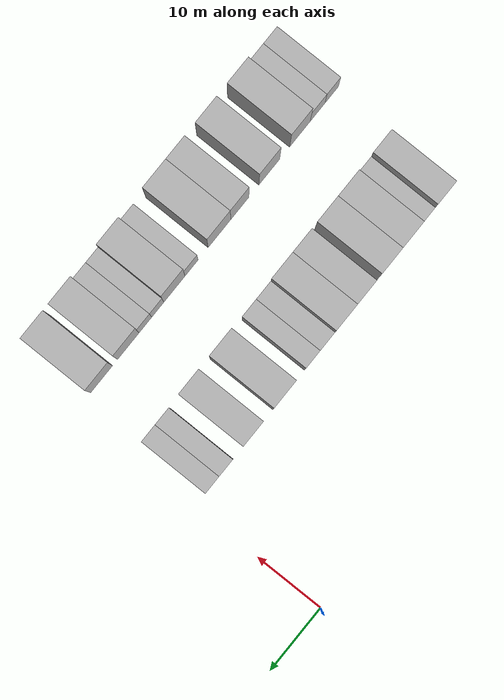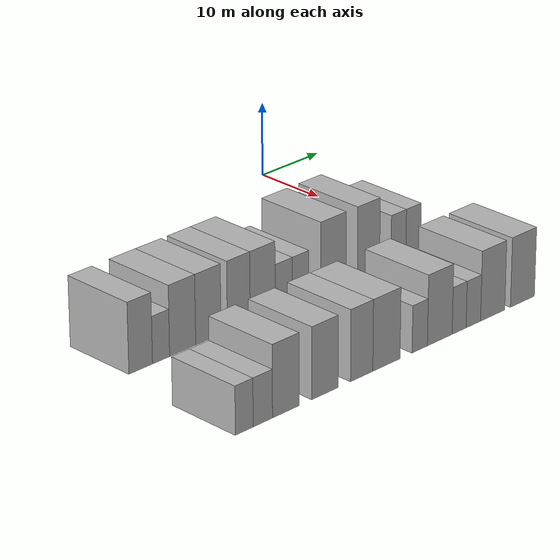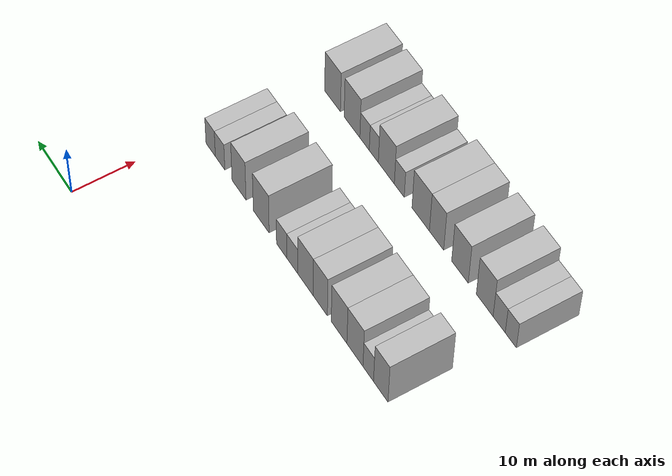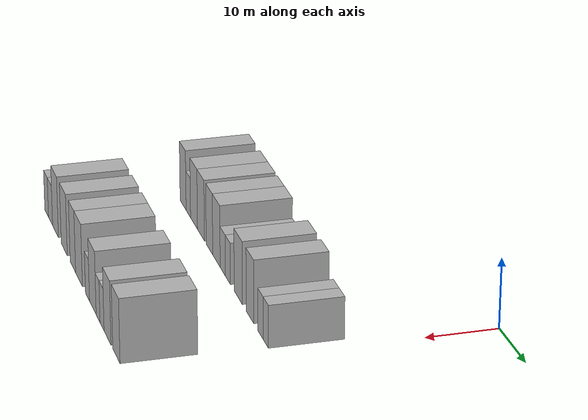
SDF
<sdf version="1.6">
 <world name="default">
  <model name="building_39">
   <static>1</static>
   <pose>25.0000 -48.7673 0 0.000000 0.000000 0.000000</pose>
   <link name="link">
    <pose>0 0 4.50 0 0 0</pose>
    <collision name="collision"><geometry><box><size>10.0000 3.6170 9.0000</size></box></geometry></collision>
    <visual name="visual">
     <cast_shadows>0</cast_shadows>
     <geometry><box><size>10.0000 3.6170 9.0000</size></box></geometry>
     <material>
      <script>
       <uri>model://HANNAS_wall/materials/scripts</uri>
       <uri>model://HANNAS_wall/materials/textures</uri>
       <name>vrc/HANNAS_wall</name>
      </script>
     </material>
    </visual>
   </link>
  </model>
  <model name="building_40">
   <static>1</static>
   <pose>25.0000 -45.6345 0 0.000000 0.000000 0.000000</pose>
   <link name="link">
    <pose>0 0 3.00 0 0 0</pose>
    <collision name="collision"><geometry><box><size>10.0000 2.6487 6.0000</size></box></geometry></collision>
    <visual name="visual">
     <cast_shadows>0</cast_shadows>
     <geometry><box><size>10.0000 2.6487 6.0000</size></box></geometry>
     <material>
      <script>
       <uri>model://HANNAS_wall/materials/scripts</uri>
       <uri>model://HANNAS_wall/materials/textures</uri>
       <name>vrc/HANNAS_wall</name>
      </script>
     </material>
    </visual>
   </link>
  </model>
  <model name="building_41">
   <static>1</static>
   <pose>25.0000 -42.2691 0 0.000000 0.000000 0.000000</pose>
   <link name="link">
    <pose>0 0 4.50 0 0 0</pose>
    <collision name="collision"><geometry><box><size>10.0000 4.0822 9.0000</size></box></geometry></collision>
    <visual name="visual">
     <cast_shadows>0</cast_shadows>
     <geometry><box><size>10.0000 4.0822 9.0000</size></box></geometry>
     <material>
      <script>
       <uri>model://HANNAS_wall/materials/scripts</uri>
       <uri>model://HANNAS_wall/materials/textures</uri>
       <name>vrc/HANNAS_wall</name>
      </script>
     </material>
    </visual>
   </link>
  </model>
  <model name="building_42">
   <static>1</static>
   <pose>25.0000 -38.2107 0 0.000000 0.000000 0.000000</pose>
   <link name="link">
    <pose>0 0 4.50 0 0 0</pose>
    <collision name="collision"><geometry><box><size>10.0000 4.0345 9.0000</size></box></geometry></collision>
    <visual name="visual">
     <cast_shadows>0</cast_shadows>
     <geometry><box><size>10.0000 4.0345 9.0000</size></box></geometry>
     <material>
      <script>
       <uri>model://HANNAS_wall/materials/scripts</uri>
       <uri>model://HANNAS_wall/materials/textures</uri>
       <name>vrc/HANNAS_wall</name>
      </script>
     </material>
    </visual>
   </link>
  </model>
  <model name="building_43">
   <static>1</static>
   <pose>25.0000 -33.3450 0 0.000000 0.000000 0.000000</pose>
   <link name="link">
    <pose>0 0 4.50 0 0 0</pose>
    <collision name="collision"><geometry><box><size>10.0000 3.6970 9.0000</size></box></geometry></collision>
    <visual name="visual">
     <cast_shadows>0</cast_shadows>
     <geometry><box><size>10.0000 3.6970 9.0000</size></box></geometry>
     <material>
      <script>
       <uri>model://HANNAS_wall/materials/scripts</uri>
       <uri>model://HANNAS_wall/materials/textures</uri>
       <name>vrc/HANNAS_wall</name>
      </script>
     </material>
    </visual>
   </link>
  </model>
  <model name="building_44">
   <static>1</static>
   <pose>25.0000 -29.4401 0 0.000000 0.000000 0.000000</pose>
   <link name="link">
    <pose>0 0 4.50 0 0 0</pose>
    <collision name="collision"><geometry><box><size>10.0000 4.1129 9.0000</size></box></geometry></collision>
    <visual name="visual">
     <cast_shadows>0</cast_shadows>
     <geometry><box><size>10.0000 4.1129 9.0000</size></box></geometry>
     <material>
      <script>
       <uri>model://HANNAS_wall/materials/scripts</uri>
       <uri>model://HANNAS_wall/materials/textures</uri>
       <name>vrc/HANNAS_wall</name>
      </script>
     </material>
    </visual>
   </link>
  </model>
  <model name="building_45">
   <static>1</static>
   <pose>25.0000 -25.9536 0 0.000000 0.000000 0.000000</pose>
   <link name="link">
    <pose>0 0 3.00 0 0 0</pose>
    <collision name="collision"><geometry><box><size>10.0000 2.8602 6.0000</size></box></geometry></collision>
    <visual name="visual">
     <cast_shadows>0</cast_shadows>
     <geometry><box><size>10.0000 2.8602 6.0000</size></box></geometry>
     <material>
      <script>
       <uri>model://HANNAS_wall/materials/scripts</uri>
       <uri>model://HANNAS_wall/materials/textures</uri>
       <name>vrc/HANNAS_wall</name>
      </script>
     </material>
    </visual>
   </link>
  </model>
  <model name="building_46">
   <static>1</static>
   <pose>25.0000 -23.1433 0 0.000000 0.000000 0.000000</pose>
   <link name="link">
    <pose>0 0 3.00 0 0 0</pose>
    <collision name="collision"><geometry><box><size>10.0000 2.7603 6.0000</size></box></geometry></collision>
    <visual name="visual">
     <cast_shadows>0</cast_shadows>
     <geometry><box><size>10.0000 2.7603 6.0000</size></box></geometry>
     <material>
      <script>
       <uri>model://HANNAS_wall/materials/scripts</uri>
       <uri>model://HANNAS_wall/materials/textures</uri>
       <name>vrc/HANNAS_wall</name>
      </script>
     </material>
    </visual>
   </link>
  </model>
  <model name="building_47">
   <static>1</static>
   <pose>25.0000 -17.6112 0 0.000000 0.000000 0.000000</pose>
   <link name="link">
    <pose>0 0 4.50 0 0 0</pose>
    <collision name="collision"><geometry><box><size>10.0000 4.3039 9.0000</size></box></geometry></collision>
    <visual name="visual">
     <cast_shadows>0</cast_shadows>
     <geometry><box><size>10.0000 4.3039 9.0000</size></box></geometry>
     <material>
      <script>
       <uri>model://HANNAS_wall/materials/scripts</uri>
       <uri>model://HANNAS_wall/materials/textures</uri>
       <name>vrc/HANNAS_wall</name>
      </script>
     </material>
    </visual>
   </link>
  </model>
  <model name="building_48">
   <static>1</static>
   <pose>25.0000 -11.5176 0 0.000000 0.000000 0.000000</pose>
   <link name="link">
    <pose>0 0 4.50 0 0 0</pose>
    <collision name="collision"><geometry><box><size>10.0000 3.8833 9.0000</size></box></geometry></collision>
    <visual name="visual">
     <cast_shadows>0</cast_shadows>
     <geometry><box><size>10.0000 3.8833 9.0000</size></box></geometry>
     <material>
      <script>
       <uri>model://HANNAS_wall/materials/scripts</uri>
       <uri>model://HANNAS_wall/materials/textures</uri>
       <name>vrc/HANNAS_wall</name>
      </script>
     </material>
    </visual>
   </link>
  </model>
  <model name="building_49">
   <static>1</static>
   <pose>25.0000 -6.2448 0 0.000000 0.000000 0.000000</pose>
   <link name="link">
    <pose>0 0 3.00 0 0 0</pose>
    <collision name="collision"><geometry><box><size>10.0000 2.6624 6.0000</size></box></geometry></collision>
    <visual name="visual">
     <cast_shadows>0</cast_shadows>
     <geometry><box><size>10.0000 2.6624 6.0000</size></box></geometry>
     <material>
      <script>
       <uri>model://HANNAS_wall/materials/scripts</uri>
       <uri>model://HANNAS_wall/materials/textures</uri>
       <name>vrc/HANNAS_wall</name>
      </script>
     </material>
    </visual>
   </link>
  </model>
  <model name="building_50">
   <static>1</static>
   <pose>25.0000 -3.5870 0 0.000000 0.000000 0.000000</pose>
   <link name="link">
    <pose>0 0 3.00 0 0 0</pose>
    <collision name="collision"><geometry><box><size>10.0000 2.6531 6.0000</size></box></geometry></collision>
    <visual name="visual">
     <cast_shadows>0</cast_shadows>
     <geometry><box><size>10.0000 2.6531 6.0000</size></box></geometry>
     <material>
      <script>
       <uri>model://HANNAS_wall/materials/scripts</uri>
       <uri>model://HANNAS_wall/materials/textures</uri>
       <name>vrc/HANNAS_wall</name>
      </script>
     </material>
    </visual>
   </link>
  </model>
  <model name="building_130">
   <static>1</static>
   <pose>44.0000 -50.8875 0 0.000000 0.000000 0.000000</pose>
   <link name="link">
    <pose>0 0 3.00 0 0 0</pose>
    <collision name="collision"><geometry><box><size>10.0000 2.7025 6.0000</size></box></geometry></collision>
    <visual name="visual">
     <cast_shadows>0</cast_shadows>
     <geometry><box><size>10.0000 2.7025 6.0000</size></box></geometry>
     <material>
      <script>
       <uri>model://HANNAS_wall/materials/scripts</uri>
       <uri>model://HANNAS_wall/materials/textures</uri>
       <name>vrc/HANNAS_wall</name>
      </script>
     </material>
    </visual>
   </link>
  </model>
  <model name="building_131">
   <static>1</static>
   <pose>44.0000 -48.0584 0 0.000000 0.000000 0.000000</pose>
   <link name="link">
    <pose>0 0 3.00 0 0 0</pose>
    <collision name="collision"><geometry><box><size>10.0000 2.9557 6.0000</size></box></geometry></collision>
    <visual name="visual">
     <cast_shadows>0</cast_shadows>
     <geometry><box><size>10.0000 2.9557 6.0000</size></box></geometry>
     <material>
      <script>
       <uri>model://HANNAS_wall/materials/scripts</uri>
       <uri>model://HANNAS_wall/materials/textures</uri>
       <name>vrc/HANNAS_wall</name>
      </script>
     </material>
    </visual>
   </link>
  </model>
  <model name="building_132">
   <static>1</static>
   <pose>44.0000 -44.5231 0 0.000000 0.000000 0.000000</pose>
   <link name="link">
    <pose>0 0 4.50 0 0 0</pose>
    <collision name="collision"><geometry><box><size>10.0000 4.1150 9.0000</size></box></geometry></collision>
    <visual name="visual">
     <cast_shadows>0</cast_shadows>
     <geometry><box><size>10.0000 4.1150 9.0000</size></box></geometry>
     <material>
      <script>
       <uri>model://HANNAS_wall/materials/scripts</uri>
       <uri>model://HANNAS_wall/materials/textures</uri>
       <name>vrc/HANNAS_wall</name>
      </script>
     </material>
    </visual>
   </link>
  </model>
  <model name="building_133">
   <static>1</static>
   <pose>44.0000 -38.3868 0 0.000000 0.000000 0.000000</pose>
   <link name="link">
    <pose>0 0 4.50 0 0 0</pose>
    <collision name="collision"><geometry><box><size>10.0000 4.1574 9.0000</size></box></geometry></collision>
    <visual name="visual">
     <cast_shadows>0</cast_shadows>
     <geometry><box><size>10.0000 4.1574 9.0000</size></box></geometry>
     <material>
      <script>
       <uri>model://HANNAS_wall/materials/scripts</uri>
       <uri>model://HANNAS_wall/materials/textures</uri>
       <name>vrc/HANNAS_wall</name>
      </script>
     </material>
    </visual>
   </link>
  </model>
  <model name="building_134">
   <static>1</static>
   <pose>44.0000 -32.4917 0 0.000000 0.000000 0.000000</pose>
   <link name="link">
    <pose>0 0 4.50 0 0 0</pose>
    <collision name="collision"><geometry><box><size>10.0000 3.6329 9.0000</size></box></geometry></collision>
    <visual name="visual">
     <cast_shadows>0</cast_shadows>
     <geometry><box><size>10.0000 3.6329 9.0000</size></box></geometry>
     <material>
      <script>
       <uri>model://HANNAS_wall/materials/scripts</uri>
       <uri>model://HANNAS_wall/materials/textures</uri>
       <name>vrc/HANNAS_wall</name>
      </script>
     </material>
    </visual>
   </link>
  </model>
  <model name="building_135">
   <static>1</static>
   <pose>44.0000 -28.4306 0 0.000000 0.000000 0.000000</pose>
   <link name="link">
    <pose>0 0 4.50 0 0 0</pose>
    <collision name="collision"><geometry><box><size>10.0000 4.4893 9.0000</size></box></geometry></collision>
    <visual name="visual">
     <cast_shadows>0</cast_shadows>
     <geometry><box><size>10.0000 4.4893 9.0000</size></box></geometry>
     <material>
      <script>
       <uri>model://HANNAS_wall/materials/scripts</uri>
       <uri>model://HANNAS_wall/materials/textures</uri>
       <name>vrc/HANNAS_wall</name>
      </script>
     </material>
    </visual>
   </link>
  </model>
  <model name="building_136">
   <static>1</static>
   <pose>44.0000 -22.8930 0 0.000000 0.000000 0.000000</pose>
   <link name="link">
    <pose>0 0 3.00 0 0 0</pose>
    <collision name="collision"><geometry><box><size>10.0000 2.5858 6.0000</size></box></geometry></collision>
    <visual name="visual">
     <cast_shadows>0</cast_shadows>
     <geometry><box><size>10.0000 2.5858 6.0000</size></box></geometry>
     <material>
      <script>
       <uri>model://HANNAS_wall/materials/scripts</uri>
       <uri>model://HANNAS_wall/materials/textures</uri>
       <name>vrc/HANNAS_wall</name>
      </script>
     </material>
    </visual>
   </link>
  </model>
  <model name="building_137">
   <static>1</static>
   <pose>44.0000 -19.4909 0 0.000000 0.000000 0.000000</pose>
   <link name="link">
    <pose>0 0 4.50 0 0 0</pose>
    <collision name="collision"><geometry><box><size>10.0000 4.2184 9.0000</size></box></geometry></collision>
    <visual name="visual">
     <cast_shadows>0</cast_shadows>
     <geometry><box><size>10.0000 4.2184 9.0000</size></box></geometry>
     <material>
      <script>
       <uri>model://HANNAS_wall/materials/scripts</uri>
       <uri>model://HANNAS_wall/materials/textures</uri>
       <name>vrc/HANNAS_wall</name>
      </script>
     </material>
    </visual>
   </link>
  </model>
  <model name="building_138">
   <static>1</static>
   <pose>44.0000 -16.1784 0 0.000000 0.000000 0.000000</pose>
   <link name="link">
    <pose>0 0 3.00 0 0 0</pose>
    <collision name="collision"><geometry><box><size>10.0000 2.4067 6.0000</size></box></geometry></collision>
    <visual name="visual">
     <cast_shadows>0</cast_shadows>
     <geometry><box><size>10.0000 2.4067 6.0000</size></box></geometry>
     <material>
      <script>
       <uri>model://HANNAS_wall/materials/scripts</uri>
       <uri>model://HANNAS_wall/materials/textures</uri>
       <name>vrc/HANNAS_wall</name>
      </script>
     </material>
    </visual>
   </link>
  </model>
  <model name="building_139">
   <static>1</static>
   <pose>44.0000 -13.7182 0 0.000000 0.000000 0.000000</pose>
   <link name="link">
    <pose>0 0 3.00 0 0 0</pose>
    <collision name="collision"><geometry><box><size>10.0000 2.5136 6.0000</size></box></geometry></collision>
    <visual name="visual">
     <cast_shadows>0</cast_shadows>
     <geometry><box><size>10.0000 2.5136 6.0000</size></box></geometry>
     <material>
      <script>
       <uri>model://HANNAS_wall/materials/scripts</uri>
       <uri>model://HANNAS_wall/materials/textures</uri>
       <name>vrc/HANNAS_wall</name>
      </script>
     </material>
    </visual>
   </link>
  </model>
  <model name="building_140">
   <static>1</static>
   <pose>44.0000 -10.3295 0 0.000000 0.000000 0.000000</pose>
   <link name="link">
    <pose>0 0 4.50 0 0 0</pose>
    <collision name="collision"><geometry><box><size>10.0000 4.2638 9.0000</size></box></geometry></collision>
    <visual name="visual">
     <cast_shadows>0</cast_shadows>
     <geometry><box><size>10.0000 4.2638 9.0000</size></box></geometry>
     <material>
      <script>
       <uri>model://HANNAS_wall/materials/scripts</uri>
       <uri>model://HANNAS_wall/materials/textures</uri>
       <name>vrc/HANNAS_wall</name>
      </script>
     </material>
    </visual>
   </link>
  </model>
  <model name="building_141">
   <static>1</static>
   <pose>44.0000 -5.0391 0 0.000000 0.000000 0.000000</pose>
   <link name="link">
    <pose>0 0 4.50 0 0 0</pose>
    <collision name="collision"><geometry><box><size>10.0000 4.3171 9.0000</size></box></geometry></collision>
    <visual name="visual">
     <cast_shadows>0</cast_shadows>
     <geometry><box><size>10.0000 4.3171 9.0000</size></box></geometry>
     <material>
      <script>
       <uri>model://HANNAS_wall/materials/scripts</uri>
       <uri>model://HANNAS_wall/materials/textures</uri>
       <name>vrc/HANNAS_wall</name>
      </script>
     </material>
    </visual>
   </link>
  </model>
 </world>
</sdf>
